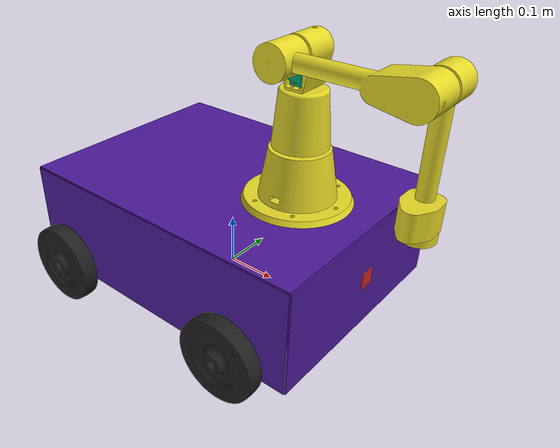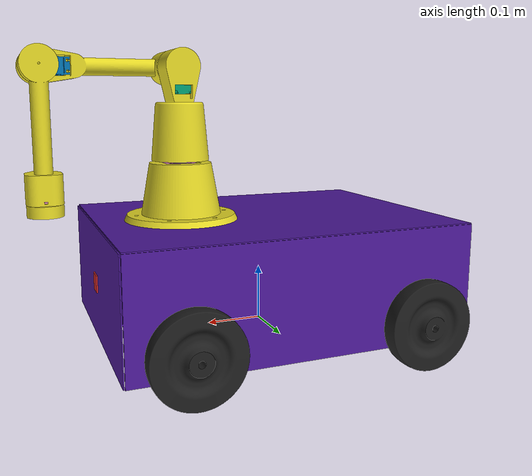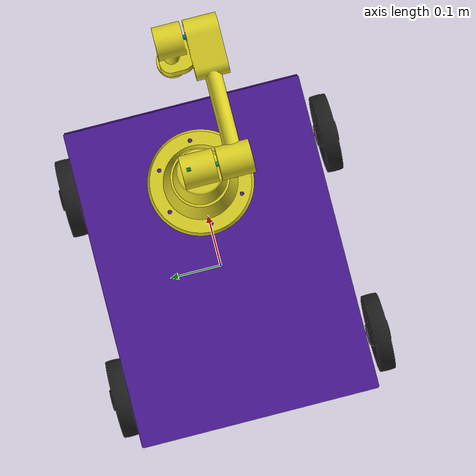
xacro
<?xml version='1.0'?>

<robot name = "swatchtha_bot" xmlns:xacro="http://www.ros.org/wiki/xacro">

    <link name = "base_link">

        <visual>
            <origin xyz = "0 0 0" rpy = "0 0 0"/>
            <geometry>
                <mesh filename="package://vehicle_environment/meshes/Chassis.stl" scale="0.001 0.001 0.001"/>

            </geometry>
        </visual>

        <collision>
            <origin xyz = "0 0 0" rpy = "0 0 0"/>
            <geometry>
                <mesh filename="package://vehicle_environment/meshes/Chassis.stl" scale="0.001 0.001 0.001"/>
            </geometry>
        </collision>

        <inertial>
            <mass value = "20"/>
            <origin xyz = "0 0 0" rpy = "0 0 0"/>
            <inertia ixx="0.90" ixy = "0" ixz = "0"
                     iyy = "0.11" iyz = "0" izz = "0.14"/>
        </inertial>
    </link>
    <xacro:property name="wheel_x_offset" value="0.02" />
    <xacro:property name="wheel_y_offset" value="0.004" />
    <xacro:property name="wheel_z_offset" value="0.04" />
    <xacro:macro name="wheel" params="is_front is_left num">
        <link name = "wheel_${num}">

            <visual>
                <origin xyz = "0 0 0" rpy = "0 0 0"/>
                <geometry>
                    <mesh filename="package://vehicle_environment/meshes/wheel.stl" scale= "0.001 0.001 0.001"/>

                </geometry>
            </visual>

            <collision>
                <origin xyz = "0 0 0" rpy = "0 0 0"/>
                <geometry>
                    <mesh filename="package://vehicle_environment/meshes/wheel.stl" scale= "0.001 0.001 0.001"/>
                </geometry>
            </collision>

            <inertial>
                <mass value = "0.5"/>
                <origin xyz = "0 0 0" rpy = "0 0 0"/>
                <inertia ixx="0.0007" ixy = "0" ixz = "0"
                        iyy = "0.0014" iyz = "0" izz = "0.0007"/>
            </inertial>
        </link>

        <joint name='${num}_wheel' type="continuous">
            <parent link= "base_link"/>
            <child link= "wheel_${num}"/>
            <origin xyz = "${is_front} ${is_left} ${wheel_z_offset}"/>
            <axis xyz="0 1 0"/>
        </joint>
    </xacro:macro>

    <xacro:wheel is_front = "0.20" is_left = "-0.255"  num="1"/>
    <xacro:wheel is_front = "-0.20" is_left = "-0.255" num="2"/>
    <xacro:wheel is_front = "0.20" is_left = "0.255" num="3"/>
    <xacro:wheel is_front = "-0.20" is_left = "0.255" num="4"/>

    <xacro:macro name="transmission_tag" params="wheel_num">

        <transmission name="transmission_${wheel_num}">
            <type>transmission_interface/SimpleTransmission</type>
            <actuator name="${wheel_num}_motor">
                <mechanicalReduction>1</mechanicalReduction>
            </actuator>
            <joint name="${wheel_num}_wheel">
                <hardwareInterface>hardware_interface/VelocityJointInterface</hardwareInterface>
            </joint>
        </transmission>
    </xacro:macro>

    <xacro:transmission_tag wheel_num="1"/>
    <xacro:transmission_tag wheel_num="2"/>
    <xacro:transmission_tag wheel_num="3"/>
    <xacro:transmission_tag wheel_num="4"/>

    <xacro:include filename="$(find vehicle_environment)/urdf/manipulator.xacro"/>

    <gazebo reference="base_link">
        <mu1 value="200.0"/>
        <mu2 value="100.0"/>
        <kp value="100000.0" />
        <kd value="100000.0" />
        <material>Gazebo/Indigo</material>
    </gazebo>

    <gazebo reference="wheel_1">
        <mu1 value="200.0"/>
        <mu2 value="100.0"/>
        <kp value="100000.0" />
        <kd value="100000.0" />
        <material>Gazebo/Black</material>
    </gazebo>

    <gazebo reference="wheel_2">
        <mu1 value="200.0"/>
        <mu2 value="100.0"/>
        <kp value="100000.0" />
        <kd value="100000.0" />
        <material>Gazebo/Black</material>
    </gazebo>

    <gazebo reference="wheel_3">
        <mu1 value="200.0"/>
        <mu2 value="100.0"/>
        <kp value="100000.0" />
        <kd value="100000.0" />
        <material>Gazebo/Black</material>
    </gazebo>

    <gazebo reference="wheel_4">
        <mu1 value="200.0"/>
        <mu2 value="100.0"/>
        <kp value="100000.0" />
        <kd value="100000.0" />
        <material>Gazebo/Black</material>
    </gazebo>

    <gazebo reference="base_link">
        <selfCollide>true</selfCollide>
    </gazebo>

    <xacro:include filename="$(find vehicle_environment)/urdf/camera.xacro"/>
    <xacro:include filename="$(find vehicle_environment)/urdf/imu.xacro"/>

    <gazebo>
        <plugin name="gazebo_ros_control" filename="libgazebo_ros_control.so">
            <robotNamespace>/</robotNamespace>
        </plugin>
    </gazebo>
 </robot>

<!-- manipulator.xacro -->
<robot xmlns:xacro="http://www.ros.org/wiki/xacro" >

    <link name = "link1_base">

        <visual>
            <origin xyz = "0 0 0" rpy = "0 0 0"/>
            <geometry>
                <mesh filename="package://vehicle_environment/meshes/Link_1_base.stl" scale="0.001 0.001 0.001"/>
            </geometry>
        </visual>

        <collision>
            <origin xyz = "0 0 0" rpy = "0 0 0"/>
            <geometry>
                <mesh filename="package://vehicle_environment/meshes/Link_1_base.stl" scale="0.001 0.001 0.001"/>
            </geometry>
        </collision>

        <inertial>
            <mass value = "1.157"/>
            <origin xyz = "0 0 0" rpy = "0 0 0"/>
            <inertia ixx="0.068" ixy = "0" ixz = "-0.041"
                     iyy = "0.094" iyz = "0" izz = "0.029"/>
        </inertial>
    </link>

    <joint name='base_to_link1_base' type="fixed">
        <parent link= "base_link"/>
        <child link= "link1_base"/>
        <origin xyz = "0.1495 0 0.202"/>
    </joint>

    <link name = "stepper_motor">

        <visual>
            <origin xyz = "-0.00816 0.00202 -0.0012" rpy = "3.1415 0 0"/>
            <geometry>
                <mesh filename="package://vehicle_environment/meshes/stepper_motor.stl" scale="0.001 0.001 0.001"/>
            </geometry>
        </visual>

        <collision>
            <origin xyz = "-0.00816 0.00202 -0.0012" rpy = "3.1415 0 0"/>
            <geometry>
                <mesh filename="package://vehicle_environment/meshes/stepper_motor.stl" scale="0.001 0.001 0.001"/>
            </geometry>
        </collision>

        <inertial>
            <mass value = "1.4"/>
            <origin xyz = "0 0 0" rpy = "0 0 0"/>
            <inertia ixx="0.068" ixy = "0" ixz = "-0.041"
                     iyy = "0.094" iyz = "0" izz = "0.029"/>
        </inertial>
    </link>

    <joint name='link1_base_to_stepper_motor' type="fixed">
        <parent link= "link1_base"/>
        <child link= "stepper_motor"/>
        <origin xyz = "0 0 0.0992" rpy = "0 0 0"/>
    </joint>

    <link name = "wheel_hub">

        <visual>
            <origin rpy = "0 0 0" xyz = "0 0 0" />
            <geometry>
                <mesh filename="package://vehicle_environment/meshes/wheel_hub.stl" scale="0.001 0.001 0.001"/>
            </geometry>
        </visual>

        <collision>
            <origin rpy = "0 0 0" xyz = "0 0 0" />
            <geometry>
                <mesh filename="package://vehicle_environment/meshes/wheel_hub.stl" scale="0.001 0.001 0.001"/>
            </geometry>
        </collision>

        <inertial>
            <mass value = "0.019"/>
            <origin xyz = "0 0 0" rpy = "0 0 0"/>
            <inertia ixx="0.0" ixy = "0" ixz = "-0.0"
                     iyy = "0.0" iyz = "0" izz = "0.0"/>
        </inertial>
    </link>

    <joint name='stepper_motor_to_wheel_hub' type="continuous">
        <parent link= "stepper_motor"/>
        <child link= "wheel_hub"/>
        <origin xyz = "0 0 0" rpy = "0 0 0"/>
        <axis xyz = "0 0 1"/>
        <limit effort="0.4" velocity="0.4"/>
    </joint>

    <link name = "link1">

        <visual>
            <origin rpy = "0 0 0" xyz = "0 0 0" />
            <geometry>
                <mesh filename="package://vehicle_environment/meshes/link_1.stl" scale="0.001 0.001 0.001"/>
            </geometry>
        </visual>

        <collision>
            <origin rpy = "0 0 0" xyz = "0 0 0" />
            <geometry>
                <mesh filename="package://vehicle_environment/meshes/link_1.stl" scale="0.001 0.001 0.001"/>
            </geometry>
        </collision>

        <inertial>
            <mass value = "0.619"/>
            <origin xyz = "0 0 0" rpy = "0 0 0"/>
            <inertia ixx="0.00244" ixy = "0" ixz = "-0.0"
                     iyy = "0.00244" iyz = "0" izz = "0.00732"/>
        </inertial>
    </link>

    <joint name='wheel_hub_to_link1' type="fixed">
        <parent link= "wheel_hub"/>
        <child link= "link1"/>
        <origin xyz = "0 0 0.005" rpy = "0 0 0"/>
    </joint>

    <link name = "link1_top">

        <visual>
            <origin rpy = "0 0 0" xyz = "0 0 0" />
            <geometry>
                <mesh filename="package://vehicle_environment/meshes/link1_top.stl" scale="0.001 0.001 0.001"/>
            </geometry>
        </visual>

        <collision>
            <origin rpy = "0 0 0" xyz = "0 0 0" />
            <geometry>
                <mesh filename="package://vehicle_environment/meshes/link1_top.stl" scale="0.001 0.001 0.001"/>
            </geometry>
        </collision>

        <inertial>
            <mass value = "0.149"/>
            <origin xyz = "0 0 0" rpy = "0 0 0"/>
            <inertia ixx="0.00501" ixy = "0" ixz = "-0.0"
                     iyy = "0.00504" iyz = "0.00090" izz = "0.00094"/>
        </inertial>
    </link>

    <joint name='link1_to_link1_top' type="fixed">
        <parent link= "link1"/>
        <child link= "link1_top"/>
        <origin xyz = "0 0 0.1" rpy = "0 0 0"/>
    </joint>

    <link name = "servo_motor_1">

        <visual>
            <origin xyz = "0 0 -0.0049" rpy = "0 0 0" />
            <geometry>
                <mesh filename="package://vehicle_environment/meshes/servo_motor_1.stl" scale="0.001 0.001 0.001"/>
            </geometry>
        </visual>

        <collision>
            <origin xyz = "0 0 -0.0049" rpy = "0 0 0" />
            <geometry>
                <mesh filename="package://vehicle_environment/meshes/servo_motor_1.stl" scale="0.001 0.001 0.001"/>
            </geometry>
        </collision>

        <inertial>
            <mass value = "0.17"/>
            <origin xyz = "0 0 0" rpy = "0 0 0"/>
            <inertia ixx="0.00468" ixy = "0" ixz = "-0.0"
                     iyy = "0.00460" iyz = "0.00090" izz = "0.00080"/>
        </inertial>
    </link>

    <joint name='link1_top_to_servo_motor_1' type="fixed">
        <parent link= "link1_top"/>
        <child link= "servo_motor_1"/>
        <origin xyz = "0 0 0" rpy = "0 0 0"/>
    </joint>

    <link name = "link_2">

        <visual>
            <origin xyz = "0 0 0" rpy = "0 0 -0.785" />
            <geometry>
                <mesh filename="package://vehicle_environment/meshes/link_2.stl" scale="0.001 0.001 0.001"/>
            </geometry>
        </visual>

        <collision>
            <origin xyz = "0 0 0" rpy = "0 0 -0.785" />
            <geometry>
                <mesh filename="package://vehicle_environment/meshes/link_2.stl" scale="0.001 0.001 0.001"/>
            </geometry>
        </collision>

        <inertial>
            <mass value = "0.17"/>
            <origin xyz = "0 0 0" rpy = "0 0 0"/>
            <inertia ixx="0.00468" ixy = "0" ixz = "-0.0"
                     iyy = "0.00460" iyz = "0.00090" izz = "0.00080"/>
        </inertial>
    </link>

    <joint name='servo_motor_1_to_link2' type="revolute">
        <parent link= "servo_motor_1"/>
        <child link= "link_2"/>
        <origin xyz = "0 -0.08515 0.06" rpy = "1.57 3.1415 3.1415"/>
        <axis xyz = "0 0 1"/>
        <limit effort="0.6" velocity="0.3" lower="-1.047" upper="0.785" />
    </joint>

    <link name = "servo_motor_2">

        <visual>
            <origin xyz = "0 0 0" rpy = "0 0 0" />
            <geometry>
                <mesh filename="package://vehicle_environment/meshes/servo_motor_2.stl" scale="0.001 0.001 0.001"/>
            </geometry>
        </visual>

        <collision>
            <origin xyz = "0 0 0" rpy = "0 0 0" />
            <geometry>
                <mesh filename="package://vehicle_environment/meshes/servo_motor_2.stl" scale="0.001 0.001 0.001"/>
            </geometry>
        </collision>

        <inertial>
            <mass value = "0.17"/>
            <origin xyz = "0 0 0" rpy = "0 0 0"/>
            <inertia ixx="0.000" ixy = "0" ixz = "-0.000641"
                     iyy = "0.008032" iyz = "0.000" izz = "0.000"/>
        </inertial>
    </link>

    <joint name='link2_to_servo_motor_2' type="fixed">
        <parent link= "link_2"/>
        <child link= "servo_motor_2"/>
        <origin xyz = "0 0 0" rpy = "0 0 0"/>
    </joint>

    <link name = "link_3">

        <visual>
            <origin xyz = "0 0 0" rpy = "0 0 -0.785" />
            <geometry>
                <mesh filename="package://vehicle_environment/meshes/link_3.stl" scale="0.001 0.001 0.001"/>
            </geometry>
        </visual>

        <collision>
            <origin xyz = "0 0 0" rpy = "0 0 -0.785" />
            <geometry>
                <mesh filename="package://vehicle_environment/meshes/link_3.stl" scale="0.001 0.001 0.001"/>
            </geometry>
        </collision>

        <inertial>
            <mass value = "0.438"/>
            <origin xyz = "0 0 0" rpy = "0 0 0"/>
            <inertia ixx="0.00434" ixy = "-0.00409" ixz = "-0.000324"
                     iyy = "0.00431" iyz = "-0.000326" izz = "0.00836"/>
        </inertial>
    </link>

    <joint name='servo_motor_2_to_link3' type="revolute">
        <parent link= "servo_motor_2"/>
        <child link= "link_3"/>
        <origin xyz = "0.23 0 0.0805" rpy = "0 3.1415 -1.57"/>
        <axis xyz = "0 0 1"/>
        <limit effort="0.4" velocity="0.1" lower="-0.524" upper="2.094"/>
    </joint>

    <link name = "servo_motor_3">

        <visual>
            <origin xyz = "0 0 0" rpy = "0 0 0" />
            <geometry>
                <mesh filename="package://vehicle_environment/meshes/servo_motor_3.stl" scale="0.001 0.001 0.001"/>
            </geometry>
        </visual>

        <collision>
            <origin xyz = "0 0 0" rpy = "0 0 0" />
            <geometry>
                <mesh filename="package://vehicle_environment/meshes/servo_motor_3.stl" scale="0.001 0.001 0.001"/>
            </geometry>
        </collision>

        <inertial>
            <mass value = "0.055"/>
            <origin xyz = "0 0 0" rpy = "0 0 0"/>
            <inertia ixx="0" ixy = "0" ixz = "0"
                     iyy = "0" iyz = "0" izz = "0"/>
        </inertial>
    </link>

    <joint name='link_3_to_servo_motor_3' type="fixed">
        <parent link= "link_3"/>
        <child link= "servo_motor_3"/>
        <origin xyz = "0.18698 0 0.01" rpy = "0 1.57 0"/>
    </joint>

    <link name = "gripper_base">

        <visual>
            <origin xyz = "0 0 0" rpy = "0 -0 0" />
            <geometry>
                <mesh filename="package://vehicle_environment/meshes/gripper_base.stl" scale="0.001 0.001 0.001"/>
            </geometry>
        </visual>

        <collision>
            <origin xyz = "0 0 0" rpy = "0 0 0" />
            <geometry>
                <mesh filename="package://vehicle_environment/meshes/gripper_base.stl" scale="0.001 0.001 0.001"/>
            </geometry>
        </collision>

        <inertial>
            <mass value = "0.059"/>
            <origin xyz = "0 0 0" rpy = "0 0 0"/>
            <inertia ixx="0" ixy = "0" ixz = "0"
                     iyy = "0" iyz = "0" izz = "0"/>
        </inertial>
    </link>

    <joint name='servo_motor_3_to_gripper_base' type="continuous">
        <parent link= "servo_motor_3"/>
        <child link= "gripper_base"/>
        <origin xyz = "0.01 0 0.0395" rpy = "0 0 0"/>
        <axis xyz = "0 0 1"/>
        <limit effort="0.1" velocity="0.3"/>
    </joint>

    <transmission name="transmission_joint_1">
        <type>transmission_interface/SimpleTransmission</type>
        <actuator name="stepper_motor">
            <mechanicalReduction>1</mechanicalReduction>
        </actuator>
        <joint name="stepper_motor_to_wheel_hub">
            <hardwareInterface>hardware_interface/PositionJointInterface</hardwareInterface>
        </joint>
    </transmission>

    <transmission name="transmission_joint_2">
        <type>transmission_interface/SimpleTransmission</type>
        <actuator name="link_2">
            <mechanicalReduction>1</mechanicalReduction>
        </actuator>
        <joint name="servo_motor_1_to_link2">
            <hardwareInterface>hardware_interface/PositionJointInterface</hardwareInterface>
        </joint>
    </transmission>

    <transmission name="transmission_joint_3">
        <type>transmission_interface/SimpleTransmission</type>
        <actuator name="link_3">
            <mechanicalReduction>1</mechanicalReduction>
        </actuator>
        <joint name="servo_motor_2_to_link3">
            <hardwareInterface>hardware_interface/PositionJointInterface</hardwareInterface>
        </joint>
    </transmission>

    <transmission name="transmission_joint_4">
        <type>transmission_interface/SimpleTransmission</type>
        <actuator name="gripper_base">
            <mechanicalReduction>1</mechanicalReduction>
        </actuator>
        <joint name="servo_motor_3_to_gripper_base">
            <hardwareInterface>hardware_interface/PositionJointInterface</hardwareInterface>
        </joint>
    </transmission>

    <gazebo reference="link1_base">
        <mu1 value="200.0"/>
        <mu2 value="100.0"/>
        <kp value="100000.0" />
        <kd value="100000.0" />
        <material>Gazebo/Yellow</material>
    </gazebo>

    <gazebo reference="link1">
        <mu1 value="200.0"/>
        <mu2 value="100.0"/>
        <kp value="100000.0" />
        <kd value="100000.0" />
        <material>Gazebo/Yellow</material>
    </gazebo>

    <gazebo reference="link1_top">
        <mu1 value="200.0"/>
        <mu2 value="100.0"/>
        <kp value="100000.0" />
        <kd value="100000.0" />
        <material>Gazebo/Yellow</material>
    </gazebo>

    <gazebo reference="link_2">
        <mu1 value="200.0"/>
        <mu2 value="100.0"/>
        <kp value="100000.0" />
        <kd value="100000.0" />
        <material>Gazebo/Yellow</material>
    </gazebo>

    <gazebo reference="link_3">
        <mu1 value="200.0"/>
        <mu2 value="100.0"/>
        <kp value="100000.0" />
        <kd value="100000.0" />
        <material>Gazebo/Yellow</material>
    </gazebo>

    <gazebo reference="gripper_base">
        <mu1 value="200.0"/>
        <mu2 value="100.0"/>
        <kp value="100000.0" />
        <kd value="100000.0" />
        <material>Gazebo/Yellow</material>
    </gazebo>

</robot>

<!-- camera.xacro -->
<robot xmlns:xacro="http://www.ros.org/wiki/xacro" >

    <link name="camera_link">
        <visual>
            <geometry>
                <box size="0.010 0.03 0.03"/>
            </geometry>
        </visual>
    </link>

    <joint name="camera_joint" type="fixed">
        <parent link="base_link"/>
        <child link="camera_link"/>
        <origin xyz="0.3 0 0.1" rpy="0 0 0"/>
    </joint>

    <link name="camera_link_optical"></link>

    <joint name="camera_optical_joint" type="fixed">
        <parent link="camera_link"/>
        <child link="camera_link_optical"/>
        <origin xyz="0 0 0" rpy="${-pi/2} 0 ${-pi/2}"/>
    </joint>

    <gazebo reference="camera_link">
        <material>Gazebo/Red</material>

        <sensor name="camera" type="camera">
            <pose> 0 0 0 0 0 0 </pose>
            <visualize>true</visualize>
            <update_rate>10</update_rate>
            <camera>
                <horizontal_fov>1.089</horizontal_fov>
                <image>
                    <format>R8G8B8</format>
                    <width>640</width>
                    <height>480</height>
                </image>
                <clip>
                    <near>0.05</near>
                    <far>8.0</far>
                </clip>
            </camera>
            <plugin name="camera_controller" filename="libgazebo_ros_camera.so">
                <frame_name>camera_link_optical</frame_name>
            </plugin>
        </sensor>
    </gazebo>

</robot>

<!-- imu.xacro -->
<robot xmlns:xacro="http://www.ros.org/wiki/xacro" >

   <link name="imu_frame">
        <visual>
            <geometry>
                <cylinder radius="0.001" length="0.001"/>
            </geometry>
        </visual>

        <inertial>
            <mass value = "0.0001"/>
            <origin xyz = "0 0 0" rpy = "0 0 0"/>
            <inertia ixx="0.00001" ixy = "0" ixz = "0"
                        iyy = "0.00001" iyz = "0" izz = "0.0000001"/>
        </inertial>
    </link>

    <joint name="imu_joint" type="fixed">
        <parent link="base_link"/>
        <child link="imu_frame"/>
        <origin xyz="0.0 0 0.20" rpy="0 0 0"/>
    </joint>

    <gazebo reference="imu_frame">
        <gravity>true</gravity>
        <sensor name="imu_sensor" type="imu">
        <always_on>true</always_on>
        <update_rate>100</update_rate>
        <visualize>true</visualize>
        <topic>imu</topic>
        <plugin filename="libgazebo_ros_imu_sensor.so" name="imu_plugin">
            <topicName>imu</topicName>
            <bodyName>imu_frame</bodyName>
            <updateRateHZ>10.0</updateRateHZ>
            <gaussianNoise>0.0</gaussianNoise>
            <xyzOffset>0 0 0</xyzOffset>
            <rpyOffset>0 0 0</rpyOffset>
            <frameName>imu_frame</frameName>
            <initialOrientationAsReference>false</initialOrientationAsReference>
        </plugin>
        <pose>0 0 0 0 0 0</pose>
        </sensor>
    </gazebo>

</robot>
